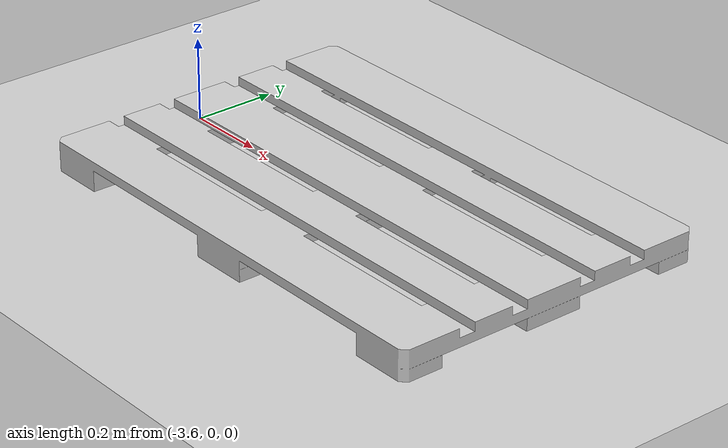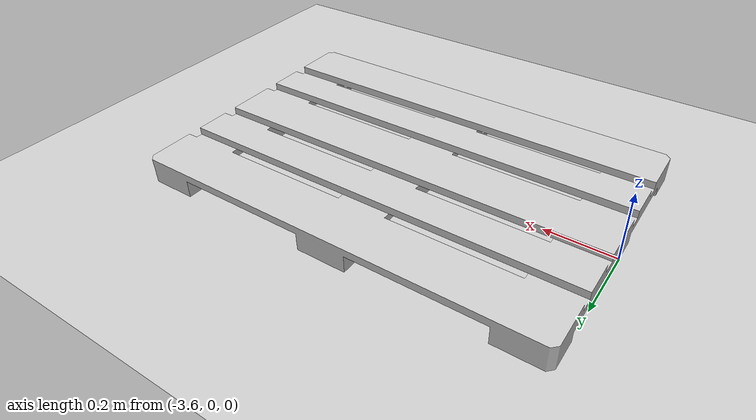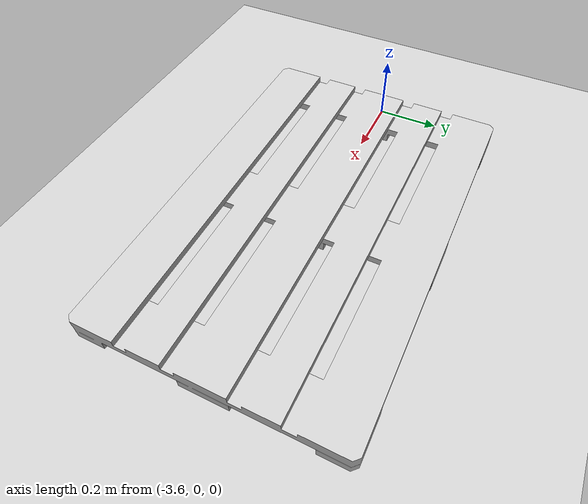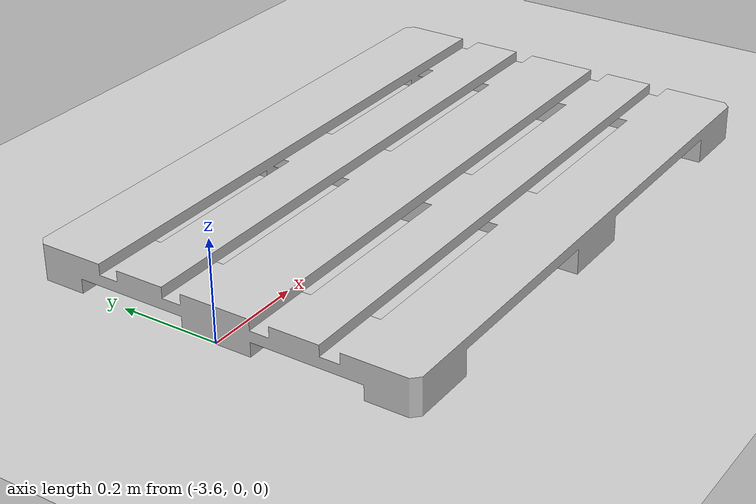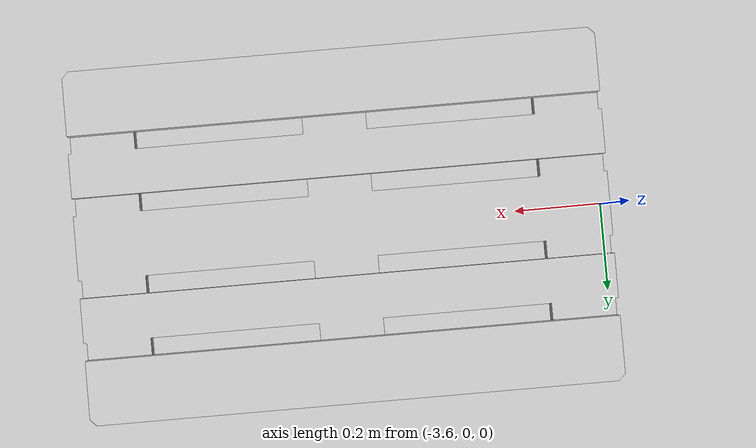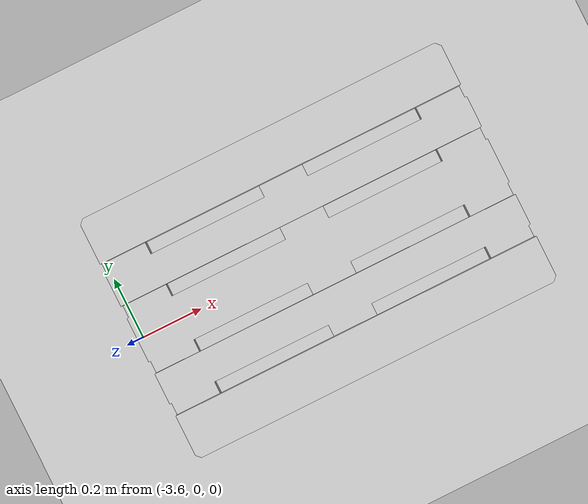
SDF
<?xml version="1.0" ?>
 <sdf version='1.6'>
  <world name='default'>
    <light name='sun' type='directional'>
      <cast_shadows>1</cast_shadows>
      <pose frame=''>0 0 10 0 -0 0</pose>
      <diffuse>0.8 0.8 0.8 1</diffuse>
      <specular>0.1 0.1 0.1 1</specular>
      <attenuation>
        <range>1000</range>
        <constant>0.9</constant>
        <linear>0.01</linear>
        <quadratic>0.001</quadratic>
      </attenuation>
      <direction>-0.5 0.5 -1</direction>
    </light>
    <model name='ground_plane'>
      <static>1</static>
      <link name='link'>
        <collision name='collision'>
          <geometry>
            <plane>
              <normal>0 0 1</normal>
              <size>100 100</size>
            </plane>
          </geometry>
          <surface>
            <friction>
              <ode>
                <mu>100</mu>
                <mu2>50</mu2>
              </ode>
              <torsional>
                <ode/>
              </torsional>
            </friction>
            <contact>
              <ode/>
            </contact>
            <bounce/>
          </surface>
          <max_contacts>10</max_contacts>
        </collision>
        <visual name='visual'>
          <cast_shadows>0</cast_shadows>
          <geometry>
            <plane>
              <normal>0 0 1</normal>
              <size>100 100</size>
            </plane>
          </geometry>
          <material>
            <script>
              <uri>file://media/materials/scripts/gazebo.material</uri>
              <name>Gazebo/Grey</name>
            </script>
          </material>
        </visual>
        <self_collide>0</self_collide>
        <kinematic>0</kinematic>
        <gravity>1</gravity>
      </link>
    </model>
    <gravity>0 0 -9.8</gravity>
    <magnetic_field>6e-06 2.3e-05 -4.2e-05</magnetic_field>
    <atmosphere type='adiabatic'/>
    <physics name='default_physics' default='0' type='ode'>
      <max_step_size>0.001</max_step_size>
      <real_time_factor>1</real_time_factor>
      <real_time_update_rate>1000</real_time_update_rate>
    </physics>
    <scene>
      <ambient>0.4 0.4 0.4 1</ambient>
      <background>0.7 0.7 0.7 1</background>
      <shadows>1</shadows>
    </scene>
    <spherical_coordinates>
      <surface_model>EARTH_WGS84</surface_model>
      <latitude_deg>0</latitude_deg>
      <longitude_deg>0</longitude_deg>
      <elevation>0</elevation>
      <heading_deg>0</heading_deg>
    </spherical_coordinates>
    <model name='euro_pallet'>
      <pose frame=''>-3 0 0 0 0 1.570796</pose>
      <link name='link'>
        <pose frame=''>0 0 0 0 -0 0</pose>
        <inertial>
          <mass>20</mass>
          <inertia>
            <ixx>2.43</ixx>
            <ixy>0</ixy>
            <ixz>0</ixz>
            <iyy>1.1</iyy>
            <iyz>0</iyz>
            <izz>3.47</izz>
          </inertia>
        </inertial>
        <collision name='collision'>
          <pose frame=''>0 0 0.05 0 -0 0</pose>
          <geometry>
            <mesh>
              <uri>model://euro_pallet/meshes/pallet.dae</uri>
              <scale>0.1 0.1 0.1</scale>
            </mesh>
          </geometry>
          <max_contacts>10</max_contacts>
          <surface>
            <contact>
              <ode/>
            </contact>
            <bounce/>
            <friction>
              <torsional>
                <ode/>
              </torsional>
              <ode/>
            </friction>
          </surface>
        </collision>
        <visual name='visual'>
          <pose frame=''>0 0 0.05 0 -0 0</pose>
          <geometry>
            <mesh>
              <uri>model://euro_pallet/meshes/pallet.dae</uri>
              <scale>0.1 0.1 0.1</scale>
            </mesh>
          </geometry>
        </visual>
        <self_collide>0</self_collide>
        <kinematic>0</kinematic>
        <gravity>1</gravity>
      </link>
    </model>
    <gui fullscreen='0'>
      <camera name='user_camera'>
        <pose frame=''>-3.68793 -8.35797 3.05193 0 0.341796 1.36758</pose>
        <view_controller>orbit</view_controller>
        <projection_type>perspective</projection_type>
      </camera>
    </gui>
  </world>
 </sdf>
